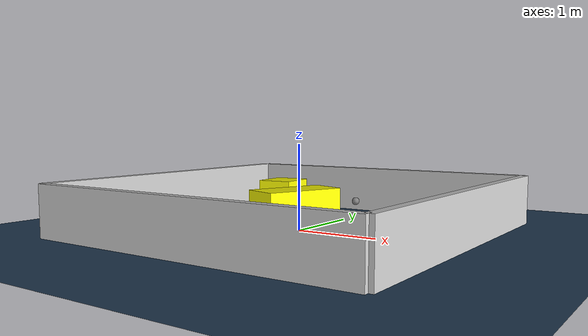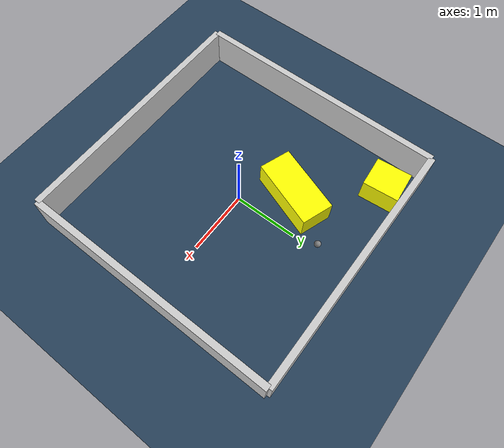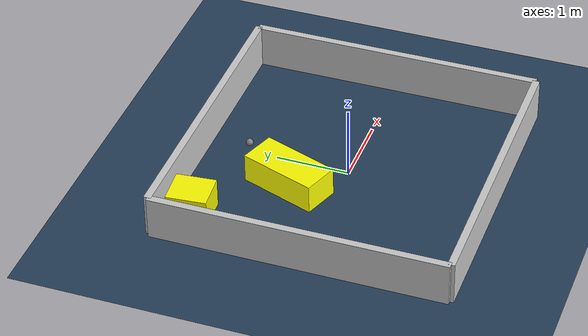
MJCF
<?xml version="1.0" ?>
<mujoco model="generated_environment">
  <option timestep="0.01" integrator="RK4" cone="elliptic"/>
  <default>
    <geom density="1"/>
  </default>
  <asset>
    <texture builtin="gradient" height="3072" rgb1="0.3 0.5 0.7" rgb2="0 0 0" type="skybox" width="512"/>
    <texture builtin="checker" height="300" mark="edge" markrgb="0.8 0.8 0.8" name="groundplane" rgb1="0.2 0.3 0.4" rgb2="0.1 0.2 0.3" type="2d" width="300"/>
    <material name="groundplane" reflectance="0.2" texrepeat="5 5" texture="groundplane" texuniform="true"/>
    <material name="robot" rgba="0.0 1.0 0.0 1"/>
  </asset>
  <worldbody>
    <light dir="0 0 -1" directional="true" pos="0 0 1.5"/>
    <geom condim="4" friction="1.0 0.005 0.001" material="groundplane" name="floor" size="0 0 0.05" type="plane"/>
    <body name="walls">
      <geom name="wall_1" condim="4" pos="-2.0 0.0 0.3" rgba="0.800000011920929 0.800000011920929 0.800000011920929 1.0" size="0.05 2.0 0.3" type="box"/>
      <geom name="wall_2" condim="4" pos="2.0 0.0 0.3" rgba="0.800000011920929 0.800000011920929 0.800000011920929 1.0" size="0.05 2.0 0.3" type="box"/>
      <geom name="wall_3" condim="4" pos="0.0 -2.0 0.3" rgba="0.800000011920929 0.800000011920929 0.800000011920929 1.0" size="2.0 0.05 0.3" type="box"/>
      <geom name="wall_4" condim="4" pos="0.0 2.0 0.3" rgba="0.800000011920929 0.800000011920929 0.800000011920929 1.0" size="2.0 0.05 0.3" type="box"/>
    </body>
    <body name="robot">
      <joint name="joint_x" type="slide" pos="0 0 0" axis="1 0 0"/>
      <joint name="joint_y" type="slide" pos="0 0 0" axis="0 1 0"/>
      <geom name="robot" type="sphere" pos="-0.03393344175540314 1.3789620485823972 0.2" size="0.05" mass="5." friction="1.0 0.005 0.0001" condim="4"/>
      <site name="sensor_ball"/>
    </body>
    <body name="obstacle_1_movable">
      <geom name="obstacle_1_movable" condim="4" pos="-0.5138014023112092 0.6473466244528989 0.2" euler="0 0 160.36548907768525" friction="1.0 0.005 0.001" rgba="1 1 0 1" size="0.2519062747495488 0.5436903668328535 0.2" type="box" mass="0.1"/>
      <joint type="free"/>
    </body>
    <body name="obstacle_2_movable">
      <geom name="obstacle_2_movable" condim="4" pos="-1.4267725821928048 1.6459583703776828 0.2" euler="0 0 185.04702610192555" friction="1.0 0.005 0.001" rgba="1 1 0 1" size="0.24741070004419663 0.2737008704313075 0.2" type="box" mass="0.1"/>
      <joint type="free"/>
    </body>
  </worldbody>
  <actuator>
    <motor name="actuator_x" joint="joint_x" gear="1" ctrlrange="-1 1"/>
    <motor name="actuator_y" joint="joint_y" gear="1" ctrlrange="-1 1"/>
  </actuator>
</mujoco>
